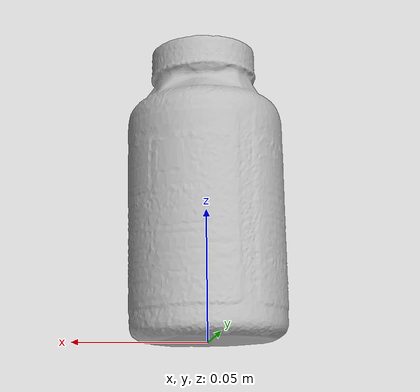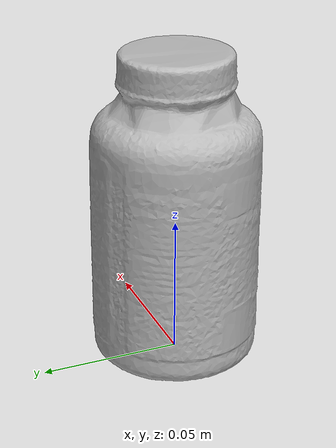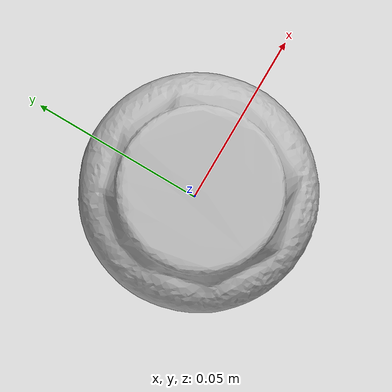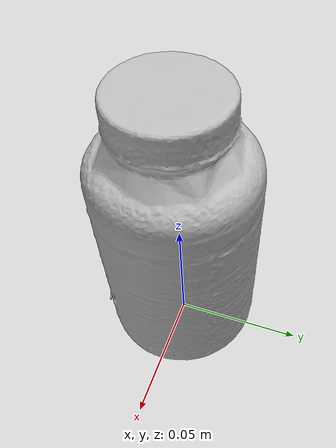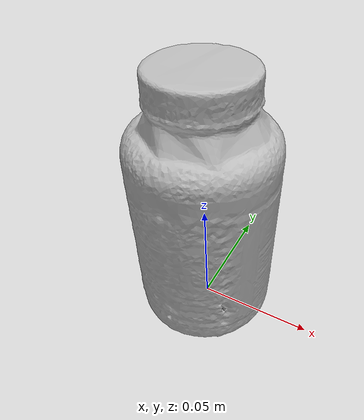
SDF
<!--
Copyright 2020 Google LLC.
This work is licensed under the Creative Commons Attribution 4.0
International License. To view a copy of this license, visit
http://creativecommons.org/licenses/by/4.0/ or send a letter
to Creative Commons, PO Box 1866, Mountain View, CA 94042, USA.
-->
<?xml version="1.0" ?>
<sdf version="1.6">
  <model name="Twinlab_Premium_Creatine_Fuel_Powder">
    <link name="link_0">
      <inertial>
        <pose>0 0 0.04 0 0 0</pose>
        <mass>0.0390</mass>
        <inertia>
          <ixx>0.000055575</ixx>
          <ixy>0</ixy>
          <ixz>0</ixz>
          <iyy>0.000055575</iyy>
          <iyz>0</iyz>
          <izz>0.00001755</izz>
        </inertia>
      </inertial>
      <visual name="visual">
        <geometry>
          <mesh>
            <uri>model://Twinlab_Premium_Creatine_Fuel_Powder/meshes/model.obj</uri>
          </mesh>
        </geometry>
      </visual>
      <collision name="collision_0">
        <geometry>
          <mesh>
            <uri>model://Twinlab_Premium_Creatine_Fuel_Powder/meshes/model.obj</uri>
          </mesh>
        </geometry>
        <surface>
          <contact>
            <ode>
              <kp>100000</kp>
              <kd>100</kd>
              <max_vel>100.0</max_vel>
              <min_depth>0.001</min_depth>
            </ode>
          </contact>
          <friction>
            <ode>
              <mu>1</mu>
              <mu2>1</mu2>
            </ode>
          </friction>
        </surface>
      </collision>
    </link>
  </model>
</sdf>
